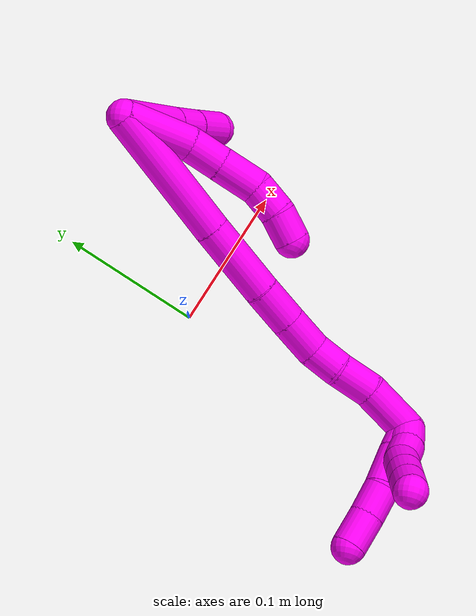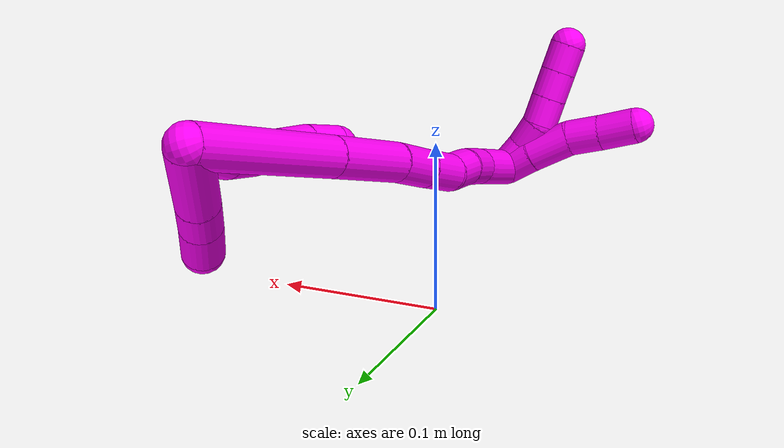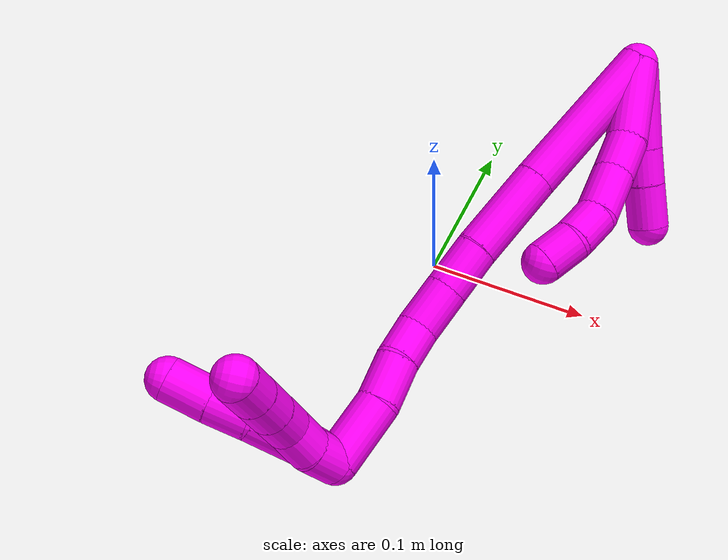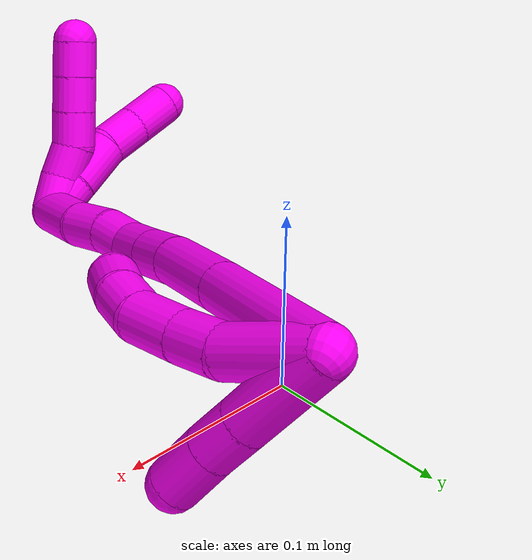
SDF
<sdf version="1.7">
 <world name="default">
  <model name="10">
   <static>0</static>
   <link name="10">
    <collision name="collision-cylinder-e_1_2_8">
     <pose>-0.024399 -0.007032 0.000189 1.54397 -1.29008 -1.26439</pose>
     <geometry><cylinder><radius>0.0125</radius><length>0.050786</length></cylinder></geometry>
     <surface>
      <friction><ode><mu>1.16</mu><mu2>1.16</mu2><slip1>0</slip1><slip2>0</slip2></ode></friction>
      <contact><ode><kp>1e+06</kp><kd>1</kd><max_vel>0</max_vel><min_depth>0.001</min_depth></ode></contact>
     </surface>
    </collision>
    <visual name="visual-cylinder-e_1_2_8">
     <pose>-0.024399 -0.007032 0.000189 1.54397 -1.29008 -1.26439</pose>
     <geometry><cylinder><radius>0.0125</radius><length>0.050786</length></cylinder></geometry>
     <material><ambient>1 0 0.964706 1</ambient></material>
    </visual>
    <collision name="collision-cylinder-e_2_8_9">
     <pose>-0.060876 -0.016357 -0.002686 2.49928 -1.26399 -2.28865</pose>
     <geometry><cylinder><radius>0.0125</radius><length>0.025339</length></cylinder></geometry>
     <surface>
      <friction><ode><mu>1.16</mu><mu2>1.16</mu2><slip1>0</slip1><slip2>0</slip2></ode></friction>
      <contact><ode><kp>1e+06</kp><kd>1</kd><max_vel>0</max_vel><min_depth>0.001</min_depth></ode></contact>
     </surface>
    </collision>
    <visual name="visual-cylinder-e_2_8_9">
     <pose>-0.060876 -0.016357 -0.002686 2.49928 -1.26399 -2.28865</pose>
     <geometry><cylinder><radius>0.0125</radius><length>0.025339</length></cylinder></geometry>
     <material><ambient>1 0 0.964706 1</ambient></material>
    </visual>
    <collision name="collision-cylinder-e_3_9_10">
     <pose>-0.087267 -0.020512 -0.009698 2.70069 -1.27475 -2.55385</pose>
     <geometry><cylinder><radius>0.0125</radius><length>0.029929</length></cylinder></geometry>
     <surface>
      <friction><ode><mu>1.16</mu><mu2>1.16</mu2><slip1>0</slip1><slip2>0</slip2></ode></friction>
      <contact><ode><kp>1e+06</kp><kd>1</kd><max_vel>0</max_vel><min_depth>0.001</min_depth></ode></contact>
     </surface>
    </collision>
    <visual name="visual-cylinder-e_3_9_10">
     <pose>-0.087267 -0.020512 -0.009698 2.70069 -1.27475 -2.55385</pose>
     <geometry><cylinder><radius>0.0125</radius><length>0.029929</length></cylinder></geometry>
     <material><ambient>1 0 0.964706 1</ambient></material>
    </visual>
    <collision name="collision-cylinder-e_4_10_11">
     <pose>-0.110772 -0.02411 -0.019714 2.86319 -0.969136 -2.62136</pose>
     <geometry><cylinder><radius>0.0125</radius><length>0.022298</length></cylinder></geometry>
     <surface>
      <friction><ode><mu>1.16</mu><mu2>1.16</mu2><slip1>0</slip1><slip2>0</slip2></ode></friction>
      <contact><ode><kp>1e+06</kp><kd>1</kd><max_vel>0</max_vel><min_depth>0.001</min_depth></ode></contact>
     </surface>
    </collision>
    <visual name="visual-cylinder-e_4_10_11">
     <pose>-0.110772 -0.02411 -0.019714 2.86319 -0.969136 -2.62136</pose>
     <geometry><cylinder><radius>0.0125</radius><length>0.022298</length></cylinder></geometry>
     <material><ambient>1 0 0.964706 1</ambient></material>
    </visual>
    <collision name="collision-cylinder-e_5_11_6">
     <pose>-0.127412 -0.029343 -0.032812 2.67981 -0.759037 -2.07643</pose>
     <geometry><cylinder><radius>0.0125</radius><length>0.021648</length></cylinder></geometry>
     <surface>
      <friction><ode><mu>1.16</mu><mu2>1.16</mu2><slip1>0</slip1><slip2>0</slip2></ode></friction>
      <contact><ode><kp>1e+06</kp><kd>1</kd><max_vel>0</max_vel><min_depth>0.001</min_depth></ode></contact>
     </surface>
    </collision>
    <visual name="visual-cylinder-e_5_11_6">
     <pose>-0.127412 -0.029343 -0.032812 2.67981 -0.759037 -2.07643</pose>
     <geometry><cylinder><radius>0.0125</radius><length>0.021648</length></cylinder></geometry>
     <material><ambient>1 0 0.964706 1</ambient></material>
    </visual>
    <collision name="collision-cylinder-e_1_2_12">
     <pose>-0.01743 -0.016237 0.009286 1.0513 -0.750112 -0.449049</pose>
     <geometry><cylinder><radius>0.0125</radius><length>0.051134</length></cylinder></geometry>
     <surface>
      <friction><ode><mu>1.16</mu><mu2>1.16</mu2><slip1>0</slip1><slip2>0</slip2></ode></friction>
      <contact><ode><kp>1e+06</kp><kd>1</kd><max_vel>0</max_vel><min_depth>0.001</min_depth></ode></contact>
     </surface>
    </collision>
    <visual name="visual-cylinder-e_1_2_12">
     <pose>-0.01743 -0.016237 0.009286 1.0513 -0.750112 -0.449049</pose>
     <geometry><cylinder><radius>0.0125</radius><length>0.051134</length></cylinder></geometry>
     <material><ambient>1 0 0.964706 1</ambient></material>
    </visual>
    <collision name="collision-cylinder-e_2_12_13">
     <pose>-0.042439 -0.039306 0.022804 1.01615 -0.75625 -0.435382</pose>
     <geometry><cylinder><radius>0.0125</radius><length>0.022093</length></cylinder></geometry>
     <surface>
      <friction><ode><mu>1.16</mu><mu2>1.16</mu2><slip1>0</slip1><slip2>0</slip2></ode></friction>
      <contact><ode><kp>1e+06</kp><kd>1</kd><max_vel>0</max_vel><min_depth>0.001</min_depth></ode></contact>
     </surface>
    </collision>
    <visual name="visual-cylinder-e_2_12_13">
     <pose>-0.042439 -0.039306 0.022804 1.01615 -0.75625 -0.435382</pose>
     <geometry><cylinder><radius>0.0125</radius><length>0.022093</length></cylinder></geometry>
     <material><ambient>1 0 0.964706 1</ambient></material>
    </visual>
    <collision name="collision-cylinder-e_3_13_5">
     <pose>-0.058738 -0.054728 0.032455 1.00808 -0.709301 -0.402952</pose>
     <geometry><cylinder><radius>0.0125</radius><length>0.026773</length></cylinder></geometry>
     <surface>
      <friction><ode><mu>1.16</mu><mu2>1.16</mu2><slip1>0</slip1><slip2>0</slip2></ode></friction>
      <contact><ode><kp>1e+06</kp><kd>1</kd><max_vel>0</max_vel><min_depth>0.001</min_depth></ode></contact>
     </surface>
    </collision>
    <visual name="visual-cylinder-e_3_13_5">
     <pose>-0.058738 -0.054728 0.032455 1.00808 -0.709301 -0.402952</pose>
     <geometry><cylinder><radius>0.0125</radius><length>0.026773</length></cylinder></geometry>
     <material><ambient>1 0 0.964706 1</ambient></material>
    </visual>
    <collision name="collision-cylinder-e_1_2_14">
     <pose>-0.03989 -0.016807 -0.024065 2.53193 -0.936413 -2.02848</pose>
     <geometry><cylinder><radius>0.0125</radius><length>0.099051</length></cylinder></geometry>
     <surface>
      <friction><ode><mu>1.16</mu><mu2>1.16</mu2><slip1>0</slip1><slip2>0</slip2></ode></friction>
      <contact><ode><kp>1e+06</kp><kd>1</kd><max_vel>0</max_vel><min_depth>0.001</min_depth></ode></contact>
     </surface>
    </collision>
    <visual name="visual-cylinder-e_1_2_14">
     <pose>-0.03989 -0.016807 -0.024065 2.53193 -0.936413 -2.02848</pose>
     <geometry><cylinder><radius>0.0125</radius><length>0.099051</length></cylinder></geometry>
     <material><ambient>1 0 0.964706 1</ambient></material>
    </visual>
    <collision name="collision-cylinder-e_2_14_15">
     <pose>-0.102233 -0.042971 -0.060974 2.512 -0.9549 -2.01811</pose>
     <geometry><cylinder><radius>0.0125</radius><length>0.055017</length></cylinder></geometry>
     <surface>
      <friction><ode><mu>1.16</mu><mu2>1.16</mu2><slip1>0</slip1><slip2>0</slip2></ode></friction>
      <contact><ode><kp>1e+06</kp><kd>1</kd><max_vel>0</max_vel><min_depth>0.001</min_depth></ode></contact>
     </surface>
    </collision>
    <visual name="visual-cylinder-e_2_14_15">
     <pose>-0.102233 -0.042971 -0.060974 2.512 -0.9549 -2.01811</pose>
     <geometry><cylinder><radius>0.0125</radius><length>0.055017</length></cylinder></geometry>
     <material><ambient>1 0 0.964706 1</ambient></material>
    </visual>
    <collision name="collision-cylinder-e_3_15_16">
     <pose>-0.136621 -0.058173 -0.079761 2.36447 -0.961135 -1.81024</pose>
     <geometry><cylinder><radius>0.0125</radius><length>0.029113</length></cylinder></geometry>
     <surface>
      <friction><ode><mu>1.16</mu><mu2>1.16</mu2><slip1>0</slip1><slip2>0</slip2></ode></friction>
      <contact><ode><kp>1e+06</kp><kd>1</kd><max_vel>0</max_vel><min_depth>0.001</min_depth></ode></contact>
     </surface>
    </collision>
    <visual name="visual-cylinder-e_3_15_16">
     <pose>-0.136621 -0.058173 -0.079761 2.36447 -0.961135 -1.81024</pose>
     <geometry><cylinder><radius>0.0125</radius><length>0.029113</length></cylinder></geometry>
     <material><ambient>1 0 0.964706 1</ambient></material>
    </visual>
    <collision name="collision-cylinder-e_4_16_17">
     <pose>-0.160272 -0.069359 -0.091468 2.39433 -0.979979 -1.87389</pose>
     <geometry><cylinder><radius>0.0125</radius><length>0.028216</length></cylinder></geometry>
     <surface>
      <friction><ode><mu>1.16</mu><mu2>1.16</mu2><slip1>0</slip1><slip2>0</slip2></ode></friction>
      <contact><ode><kp>1e+06</kp><kd>1</kd><max_vel>0</max_vel><min_depth>0.001</min_depth></ode></contact>
     </surface>
    </collision>
    <visual name="visual-cylinder-e_4_16_17">
     <pose>-0.160272 -0.069359 -0.091468 2.39433 -0.979979 -1.87389</pose>
     <geometry><cylinder><radius>0.0125</radius><length>0.028216</length></cylinder></geometry>
     <material><ambient>1 0 0.964706 1</ambient></material>
    </visual>
    <collision name="collision-cylinder-e_5_17_18">
     <pose>-0.182432 -0.075845 -0.101394 2.87311 -1.17892 -2.74308</pose>
     <geometry><cylinder><radius>0.0125</radius><length>0.022599</length></cylinder></geometry>
     <surface>
      <friction><ode><mu>1.16</mu><mu2>1.16</mu2><slip1>0</slip1><slip2>0</slip2></ode></friction>
      <contact><ode><kp>1e+06</kp><kd>1</kd><max_vel>0</max_vel><min_depth>0.001</min_depth></ode></contact>
     </surface>
    </collision>
    <visual name="visual-cylinder-e_5_17_18">
     <pose>-0.182432 -0.075845 -0.101394 2.87311 -1.17892 -2.74308</pose>
     <geometry><cylinder><radius>0.0125</radius><length>0.022599</length></cylinder></geometry>
     <material><ambient>1 0 0.964706 1</ambient></material>
    </visual>
    <collision name="collision-cylinder-e_6_18_19">
     <pose>-0.205516 -0.079933 -0.108694 2.38839 -1.2427 -2.13226</pose>
     <geometry><cylinder><radius>0.0125</radius><length>0.026708</length></cylinder></geometry>
     <surface>
      <friction><ode><mu>1.16</mu><mu2>1.16</mu2><slip1>0</slip1><slip2>0</slip2></ode></friction>
      <contact><ode><kp>1e+06</kp><kd>1</kd><max_vel>0</max_vel><min_depth>0.001</min_depth></ode></contact>
     </surface>
    </collision>
    <visual name="visual-cylinder-e_6_18_19">
     <pose>-0.205516 -0.079933 -0.108694 2.38839 -1.2427 -2.13226</pose>
     <geometry><cylinder><radius>0.0125</radius><length>0.026708</length></cylinder></geometry>
     <material><ambient>1 0 0.964706 1</ambient></material>
    </visual>
    <collision name="collision-cylinder-e_7_19_1">
     <pose>-0.235116 -0.088626 -0.119919 2.52338 -1.04142 -2.12546</pose>
     <geometry><cylinder><radius>0.0125</radius><length>0.039296</length></cylinder></geometry>
     <surface>
      <friction><ode><mu>1.16</mu><mu2>1.16</mu2><slip1>0</slip1><slip2>0</slip2></ode></friction>
      <contact><ode><kp>1e+06</kp><kd>1</kd><max_vel>0</max_vel><min_depth>0.001</min_depth></ode></contact>
     </surface>
    </collision>
    <visual name="visual-cylinder-e_7_19_1">
     <pose>-0.235116 -0.088626 -0.119919 2.52338 -1.04142 -2.12546</pose>
     <geometry><cylinder><radius>0.0125</radius><length>0.039296</length></cylinder></geometry>
     <material><ambient>1 0 0.964706 1</ambient></material>
    </visual>
    <collision name="collision-cylinder-e_1_1_20">
     <pose>-0.252383 -0.088963 -0.136406 -2.56915 -0.030875 0.104822</pose>
     <geometry><cylinder><radius>0.0125</radius><length>0.02</length></cylinder></geometry>
     <surface>
      <friction><ode><mu>1.16</mu><mu2>1.16</mu2><slip1>0</slip1><slip2>0</slip2></ode></friction>
      <contact><ode><kp>1e+06</kp><kd>1</kd><max_vel>0</max_vel><min_depth>0.001</min_depth></ode></contact>
     </surface>
    </collision>
    <visual name="visual-cylinder-e_1_1_20">
     <pose>-0.252383 -0.088963 -0.136406 -2.56915 -0.030875 0.104822</pose>
     <geometry><cylinder><radius>0.0125</radius><length>0.02</length></cylinder></geometry>
     <material><ambient>1 0 0.964706 1</ambient></material>
    </visual>
    <collision name="collision-cylinder-e_2_20_21">
     <pose>-0.250884 -0.077227 -0.152342 -2.44349 0.18182 -0.490855</pose>
     <geometry><cylinder><radius>0.0125</radius><length>0.02</length></cylinder></geometry>
     <surface>
      <friction><ode><mu>1.16</mu><mu2>1.16</mu2><slip1>0</slip1><slip2>0</slip2></ode></friction>
      <contact><ode><kp>1e+06</kp><kd>1</kd><max_vel>0</max_vel><min_depth>0.001</min_depth></ode></contact>
     </surface>
    </collision>
    <visual name="visual-cylinder-e_2_20_21">
     <pose>-0.250884 -0.077227 -0.152342 -2.44349 0.18182 -0.490855</pose>
     <geometry><cylinder><radius>0.0125</radius><length>0.02</length></cylinder></geometry>
     <material><ambient>1 0 0.964706 1</ambient></material>
    </visual>
    <collision name="collision-cylinder-e_3_21_22">
     <pose>-0.249625 -0.062859 -0.165789 -2.2045 -0.054971 0.108529</pose>
     <geometry><cylinder><radius>0.0125</radius><length>0.02</length></cylinder></geometry>
     <surface>
      <friction><ode><mu>1.16</mu><mu2>1.16</mu2><slip1>0</slip1><slip2>0</slip2></ode></friction>
      <contact><ode><kp>1e+06</kp><kd>1</kd><max_vel>0</max_vel><min_depth>0.001</min_depth></ode></contact>
     </surface>
    </collision>
    <visual name="visual-cylinder-e_3_21_22">
     <pose>-0.249625 -0.062859 -0.165789 -2.2045 -0.054971 0.108529</pose>
     <geometry><cylinder><radius>0.0125</radius><length>0.02</length></cylinder></geometry>
     <material><ambient>1 0 0.964706 1</ambient></material>
    </visual>
    <collision name="collision-cylinder-e_4_22_23">
     <pose>-0.250724 -0.046767 -0.177614 -2.20451 -0.055001 0.10859</pose>
     <geometry><cylinder><radius>0.0125</radius><length>0.02</length></cylinder></geometry>
     <surface>
      <friction><ode><mu>1.16</mu><mu2>1.16</mu2><slip1>0</slip1><slip2>0</slip2></ode></friction>
      <contact><ode><kp>1e+06</kp><kd>1</kd><max_vel>0</max_vel><min_depth>0.001</min_depth></ode></contact>
     </surface>
    </collision>
    <visual name="visual-cylinder-e_4_22_23">
     <pose>-0.250724 -0.046767 -0.177614 -2.20451 -0.055001 0.10859</pose>
     <geometry><cylinder><radius>0.0125</radius><length>0.02</length></cylinder></geometry>
     <material><ambient>1 0 0.964706 1</ambient></material>
    </visual>
    <collision name="collision-cylinder-e_5_23_4">
     <pose>-0.251848 -0.03069 -0.189458 -2.20699 -0.057419 0.113705</pose>
     <geometry><cylinder><radius>0.0125</radius><length>0.02</length></cylinder></geometry>
     <surface>
      <friction><ode><mu>1.16</mu><mu2>1.16</mu2><slip1>0</slip1><slip2>0</slip2></ode></friction>
      <contact><ode><kp>1e+06</kp><kd>1</kd><max_vel>0</max_vel><min_depth>0.001</min_depth></ode></contact>
     </surface>
    </collision>
    <visual name="visual-cylinder-e_5_23_4">
     <pose>-0.251848 -0.03069 -0.189458 -2.20699 -0.057419 0.113705</pose>
     <geometry><cylinder><radius>0.0125</radius><length>0.02</length></cylinder></geometry>
     <material><ambient>1 0 0.964706 1</ambient></material>
    </visual>
    <collision name="collision-cylinder-e_1_1_24">
     <pose>-0.249666 -0.092153 -0.138411 -2.93107 0.222593 -1.62695</pose>
     <geometry><cylinder><radius>0.0125</radius><length>0.021821</length></cylinder></geometry>
     <surface>
      <friction><ode><mu>1.16</mu><mu2>1.16</mu2><slip1>0</slip1><slip2>0</slip2></ode></friction>
      <contact><ode><kp>1e+06</kp><kd>1</kd><max_vel>0</max_vel><min_depth>0.001</min_depth></ode></contact>
     </surface>
    </collision>
    <visual name="visual-cylinder-e_1_1_24">
     <pose>-0.249666 -0.092153 -0.138411 -2.93107 0.222593 -1.62695</pose>
     <geometry><cylinder><radius>0.0125</radius><length>0.021821</length></cylinder></geometry>
     <material><ambient>1 0 0.964706 1</ambient></material>
    </visual>
    <collision name="collision-cylinder-e_2_24_25">
     <pose>-0.244669 -0.087713 -0.163354 -2.9903 0.174262 -1.7123</pose>
     <geometry><cylinder><radius>0.0125</radius><length>0.029861</length></cylinder></geometry>
     <surface>
      <friction><ode><mu>1.16</mu><mu2>1.16</mu2><slip1>0</slip1><slip2>0</slip2></ode></friction>
      <contact><ode><kp>1e+06</kp><kd>1</kd><max_vel>0</max_vel><min_depth>0.001</min_depth></ode></contact>
     </surface>
    </collision>
    <visual name="visual-cylinder-e_2_24_25">
     <pose>-0.244669 -0.087713 -0.163354 -2.9903 0.174262 -1.7123</pose>
     <geometry><cylinder><radius>0.0125</radius><length>0.029861</length></cylinder></geometry>
     <material><ambient>1 0 0.964706 1</ambient></material>
    </visual>
    <collision name="collision-cylinder-e_3_25_26">
     <pose>-0.239288 -0.086421 -0.188978 3.05847 0.245848 2.49225</pose>
     <geometry><cylinder><radius>0.0125</radius><length>0.022944</length></cylinder></geometry>
     <surface>
      <friction><ode><mu>1.16</mu><mu2>1.16</mu2><slip1>0</slip1><slip2>0</slip2></ode></friction>
      <contact><ode><kp>1e+06</kp><kd>1</kd><max_vel>0</max_vel><min_depth>0.001</min_depth></ode></contact>
     </surface>
    </collision>
    <visual name="visual-cylinder-e_3_25_26">
     <pose>-0.239288 -0.086421 -0.188978 3.05847 0.245848 2.49225</pose>
     <geometry><cylinder><radius>0.0125</radius><length>0.022944</length></cylinder></geometry>
     <material><ambient>1 0 0.964706 1</ambient></material>
    </visual>
    <collision name="collision-cylinder-e_4_26_3">
     <pose>-0.232883 -0.087853 -0.212218 3.09978 0.288817 2.856</pose>
     <geometry><cylinder><radius>0.0125</radius><length>0.025374</length></cylinder></geometry>
     <surface>
      <friction><ode><mu>1.16</mu><mu2>1.16</mu2><slip1>0</slip1><slip2>0</slip2></ode></friction>
      <contact><ode><kp>1e+06</kp><kd>1</kd><max_vel>0</max_vel><min_depth>0.001</min_depth></ode></contact>
     </surface>
    </collision>
    <visual name="visual-cylinder-e_4_26_3">
     <pose>-0.232883 -0.087853 -0.212218 3.09978 0.288817 2.856</pose>
     <geometry><cylinder><radius>0.0125</radius><length>0.025374</length></cylinder></geometry>
     <material><ambient>1 0 0.964706 1</ambient></material>
    </visual>
    <collision name="collision-sphere-3">
     <pose>-0.229269 -0.088362 -0.224369 0 -0 0</pose>
     <geometry><sphere><radius>0.0125</radius></sphere></geometry>
     <surface>
      <friction><ode><mu>1.16</mu><mu2>1.16</mu2><slip1>0</slip1><slip2>0</slip2></ode></friction>
      <contact><ode><kp>1e+06</kp><kd>1</kd><max_vel>0</max_vel><min_depth>0.001</min_depth></ode></contact>
     </surface>
    </collision>
    <visual name="visual-sphere-3">
     <pose>-0.229269 -0.088362 -0.224369 0 -0 0</pose>
     <geometry><sphere><radius>0.0125</radius></sphere></geometry>
     <material><ambient>1 0 0.964706 1</ambient></material>
    </visual>
    <collision name="collision-sphere-26">
     <pose>-0.236496 -0.087345 -0.200067 0 -0 0</pose>
     <geometry><sphere><radius>0.0125</radius></sphere></geometry>
     <surface>
      <friction><ode><mu>1.16</mu><mu2>1.16</mu2><slip1>0</slip1><slip2>0</slip2></ode></friction>
      <contact><ode><kp>1e+06</kp><kd>1</kd><max_vel>0</max_vel><min_depth>0.001</min_depth></ode></contact>
     </surface>
    </collision>
    <visual name="visual-sphere-26">
     <pose>-0.236496 -0.087345 -0.200067 0 -0 0</pose>
     <geometry><sphere><radius>0.0125</radius></sphere></geometry>
     <material><ambient>1 0 0.964706 1</ambient></material>
    </visual>
    <collision name="collision-sphere-25">
     <pose>-0.24208 -0.085497 -0.17789 0 -0 0</pose>
     <geometry><sphere><radius>0.0125</radius></sphere></geometry>
     <surface>
      <friction><ode><mu>1.16</mu><mu2>1.16</mu2><slip1>0</slip1><slip2>0</slip2></ode></friction>
      <contact><ode><kp>1e+06</kp><kd>1</kd><max_vel>0</max_vel><min_depth>0.001</min_depth></ode></contact>
     </surface>
    </collision>
    <visual name="visual-sphere-25">
     <pose>-0.24208 -0.085497 -0.17789 0 -0 0</pose>
     <geometry><sphere><radius>0.0125</radius></sphere></geometry>
     <material><ambient>1 0 0.964706 1</ambient></material>
    </visual>
    <collision name="collision-sphere-24">
     <pose>-0.247258 -0.08993 -0.148817 0 -0 0</pose>
     <geometry><sphere><radius>0.0125</radius></sphere></geometry>
     <surface>
      <friction><ode><mu>1.16</mu><mu2>1.16</mu2><slip1>0</slip1><slip2>0</slip2></ode></friction>
      <contact><ode><kp>1e+06</kp><kd>1</kd><max_vel>0</max_vel><min_depth>0.001</min_depth></ode></contact>
     </surface>
    </collision>
    <visual name="visual-sphere-24">
     <pose>-0.247258 -0.08993 -0.148817 0 -0 0</pose>
     <geometry><sphere><radius>0.0125</radius></sphere></geometry>
     <material><ambient>1 0 0.964706 1</ambient></material>
    </visual>
    <collision name="collision-sphere-4">
     <pose>-0.252422 -0.02266 -0.19539 0 -0 0</pose>
     <geometry><sphere><radius>0.0125</radius></sphere></geometry>
     <surface>
      <friction><ode><mu>1.16</mu><mu2>1.16</mu2><slip1>0</slip1><slip2>0</slip2></ode></friction>
      <contact><ode><kp>1e+06</kp><kd>1</kd><max_vel>0</max_vel><min_depth>0.001</min_depth></ode></contact>
     </surface>
    </collision>
    <visual name="visual-sphere-4">
     <pose>-0.252422 -0.02266 -0.19539 0 -0 0</pose>
     <geometry><sphere><radius>0.0125</radius></sphere></geometry>
     <material><ambient>1 0 0.964706 1</ambient></material>
    </visual>
    <collision name="collision-sphere-23">
     <pose>-0.251274 -0.03872 -0.183526 0 -0 0</pose>
     <geometry><sphere><radius>0.0125</radius></sphere></geometry>
     <surface>
      <friction><ode><mu>1.16</mu><mu2>1.16</mu2><slip1>0</slip1><slip2>0</slip2></ode></friction>
      <contact><ode><kp>1e+06</kp><kd>1</kd><max_vel>0</max_vel><min_depth>0.001</min_depth></ode></contact>
     </surface>
    </collision>
    <visual name="visual-sphere-23">
     <pose>-0.251274 -0.03872 -0.183526 0 -0 0</pose>
     <geometry><sphere><radius>0.0125</radius></sphere></geometry>
     <material><ambient>1 0 0.964706 1</ambient></material>
    </visual>
    <collision name="collision-sphere-22">
     <pose>-0.250175 -0.054813 -0.171702 0 -0 0</pose>
     <geometry><sphere><radius>0.0125</radius></sphere></geometry>
     <surface>
      <friction><ode><mu>1.16</mu><mu2>1.16</mu2><slip1>0</slip1><slip2>0</slip2></ode></friction>
      <contact><ode><kp>1e+06</kp><kd>1</kd><max_vel>0</max_vel><min_depth>0.001</min_depth></ode></contact>
     </surface>
    </collision>
    <visual name="visual-sphere-22">
     <pose>-0.250175 -0.054813 -0.171702 0 -0 0</pose>
     <geometry><sphere><radius>0.0125</radius></sphere></geometry>
     <material><ambient>1 0 0.964706 1</ambient></material>
    </visual>
    <collision name="collision-sphere-21">
     <pose>-0.249076 -0.070905 -0.159877 0 -0 0</pose>
     <geometry><sphere><radius>0.0125</radius></sphere></geometry>
     <surface>
      <friction><ode><mu>1.16</mu><mu2>1.16</mu2><slip1>0</slip1><slip2>0</slip2></ode></friction>
      <contact><ode><kp>1e+06</kp><kd>1</kd><max_vel>0</max_vel><min_depth>0.001</min_depth></ode></contact>
     </surface>
    </collision>
    <visual name="visual-sphere-21">
     <pose>-0.249076 -0.070905 -0.159877 0 -0 0</pose>
     <geometry><sphere><radius>0.0125</radius></sphere></geometry>
     <material><ambient>1 0 0.964706 1</ambient></material>
    </visual>
    <collision name="collision-sphere-20">
     <pose>-0.252692 -0.083549 -0.144808 0 -0 0</pose>
     <geometry><sphere><radius>0.0125</radius></sphere></geometry>
     <surface>
      <friction><ode><mu>1.16</mu><mu2>1.16</mu2><slip1>0</slip1><slip2>0</slip2></ode></friction>
      <contact><ode><kp>1e+06</kp><kd>1</kd><max_vel>0</max_vel><min_depth>0.001</min_depth></ode></contact>
     </surface>
    </collision>
    <visual name="visual-sphere-20">
     <pose>-0.252692 -0.083549 -0.144808 0 -0 0</pose>
     <geometry><sphere><radius>0.0125</radius></sphere></geometry>
     <material><ambient>1 0 0.964706 1</ambient></material>
    </visual>
    <collision name="collision-sphere-6">
     <pose>-0.134862 -0.032842 -0.039842 0 -0 0</pose>
     <geometry><sphere><radius>0.0125</radius></sphere></geometry>
     <surface>
      <friction><ode><mu>1.16</mu><mu2>1.16</mu2><slip1>0</slip1><slip2>0</slip2></ode></friction>
      <contact><ode><kp>1e+06</kp><kd>1</kd><max_vel>0</max_vel><min_depth>0.001</min_depth></ode></contact>
     </surface>
    </collision>
    <visual name="visual-sphere-6">
     <pose>-0.134862 -0.032842 -0.039842 0 -0 0</pose>
     <geometry><sphere><radius>0.0125</radius></sphere></geometry>
     <material><ambient>1 0 0.964706 1</ambient></material>
    </visual>
    <collision name="collision-sphere-11">
     <pose>-0.119963 -0.025844 -0.025782 0 -0 0</pose>
     <geometry><sphere><radius>0.0125</radius></sphere></geometry>
     <surface>
      <friction><ode><mu>1.16</mu><mu2>1.16</mu2><slip1>0</slip1><slip2>0</slip2></ode></friction>
      <contact><ode><kp>1e+06</kp><kd>1</kd><max_vel>0</max_vel><min_depth>0.001</min_depth></ode></contact>
     </surface>
    </collision>
    <visual name="visual-sphere-11">
     <pose>-0.119963 -0.025844 -0.025782 0 -0 0</pose>
     <geometry><sphere><radius>0.0125</radius></sphere></geometry>
     <material><ambient>1 0 0.964706 1</ambient></material>
    </visual>
    <collision name="collision-sphere-10">
     <pose>-0.10158 -0.022375 -0.013647 0 -0 0</pose>
     <geometry><sphere><radius>0.0125</radius></sphere></geometry>
     <surface>
      <friction><ode><mu>1.16</mu><mu2>1.16</mu2><slip1>0</slip1><slip2>0</slip2></ode></friction>
      <contact><ode><kp>1e+06</kp><kd>1</kd><max_vel>0</max_vel><min_depth>0.001</min_depth></ode></contact>
     </surface>
    </collision>
    <visual name="visual-sphere-10">
     <pose>-0.10158 -0.022375 -0.013647 0 -0 0</pose>
     <geometry><sphere><radius>0.0125</radius></sphere></geometry>
     <material><ambient>1 0 0.964706 1</ambient></material>
    </visual>
    <collision name="collision-sphere-9">
     <pose>-0.072954 -0.018649 -0.00575 0 -0 0</pose>
     <geometry><sphere><radius>0.0125</radius></sphere></geometry>
     <surface>
      <friction><ode><mu>1.16</mu><mu2>1.16</mu2><slip1>0</slip1><slip2>0</slip2></ode></friction>
      <contact><ode><kp>1e+06</kp><kd>1</kd><max_vel>0</max_vel><min_depth>0.001</min_depth></ode></contact>
     </surface>
    </collision>
    <visual name="visual-sphere-9">
     <pose>-0.072954 -0.018649 -0.00575 0 -0 0</pose>
     <geometry><sphere><radius>0.0125</radius></sphere></geometry>
     <material><ambient>1 0 0.964706 1</ambient></material>
    </visual>
    <collision name="collision-sphere-2">
     <geometry><sphere><radius>0.0125</radius></sphere></geometry>
     <surface>
      <friction><ode><mu>1.16</mu><mu2>1.16</mu2><slip1>0</slip1><slip2>0</slip2></ode></friction>
      <contact><ode><kp>1e+06</kp><kd>1</kd><max_vel>0</max_vel><min_depth>0.001</min_depth></ode></contact>
     </surface>
    </collision>
    <visual name="visual-sphere-2">
     <geometry><sphere><radius>0.0125</radius></sphere></geometry>
     <material><ambient>1 0 0.964706 1</ambient></material>
    </visual>
    <collision name="collision-sphere-19">
     <pose>-0.218158 -0.082876 -0.111833 0 -0 0</pose>
     <geometry><sphere><radius>0.0125</radius></sphere></geometry>
     <surface>
      <friction><ode><mu>1.16</mu><mu2>1.16</mu2><slip1>0</slip1><slip2>0</slip2></ode></friction>
      <contact><ode><kp>1e+06</kp><kd>1</kd><max_vel>0</max_vel><min_depth>0.001</min_depth></ode></contact>
     </surface>
    </collision>
    <visual name="visual-sphere-19">
     <pose>-0.218158 -0.082876 -0.111833 0 -0 0</pose>
     <geometry><sphere><radius>0.0125</radius></sphere></geometry>
     <material><ambient>1 0 0.964706 1</ambient></material>
    </visual>
    <collision name="collision-sphere-8">
     <pose>-0.048798 -0.014065 0.000377 0 -0 0</pose>
     <geometry><sphere><radius>0.0125</radius></sphere></geometry>
     <surface>
      <friction><ode><mu>1.16</mu><mu2>1.16</mu2><slip1>0</slip1><slip2>0</slip2></ode></friction>
      <contact><ode><kp>1e+06</kp><kd>1</kd><max_vel>0</max_vel><min_depth>0.001</min_depth></ode></contact>
     </surface>
    </collision>
    <visual name="visual-sphere-8">
     <pose>-0.048798 -0.014065 0.000377 0 -0 0</pose>
     <geometry><sphere><radius>0.0125</radius></sphere></geometry>
     <material><ambient>1 0 0.964706 1</ambient></material>
    </visual>
    <collision name="collision-sphere-12">
     <pose>-0.034859 -0.032475 0.018572 0 -0 0</pose>
     <geometry><sphere><radius>0.0125</radius></sphere></geometry>
     <surface>
      <friction><ode><mu>1.16</mu><mu2>1.16</mu2><slip1>0</slip1><slip2>0</slip2></ode></friction>
      <contact><ode><kp>1e+06</kp><kd>1</kd><max_vel>0</max_vel><min_depth>0.001</min_depth></ode></contact>
     </surface>
    </collision>
    <visual name="visual-sphere-12">
     <pose>-0.034859 -0.032475 0.018572 0 -0 0</pose>
     <geometry><sphere><radius>0.0125</radius></sphere></geometry>
     <material><ambient>1 0 0.964706 1</ambient></material>
    </visual>
    <collision name="collision-sphere-13">
     <pose>-0.050019 -0.046136 0.027036 0 -0 0</pose>
     <geometry><sphere><radius>0.0125</radius></sphere></geometry>
     <surface>
      <friction><ode><mu>1.16</mu><mu2>1.16</mu2><slip1>0</slip1><slip2>0</slip2></ode></friction>
      <contact><ode><kp>1e+06</kp><kd>1</kd><max_vel>0</max_vel><min_depth>0.001</min_depth></ode></contact>
     </surface>
    </collision>
    <visual name="visual-sphere-13">
     <pose>-0.050019 -0.046136 0.027036 0 -0 0</pose>
     <geometry><sphere><radius>0.0125</radius></sphere></geometry>
     <material><ambient>1 0 0.964706 1</ambient></material>
    </visual>
    <collision name="collision-sphere-5">
     <pose>-0.067457 -0.06332 0.037874 0 -0 0</pose>
     <geometry><sphere><radius>0.0125</radius></sphere></geometry>
     <surface>
      <friction><ode><mu>1.16</mu><mu2>1.16</mu2><slip1>0</slip1><slip2>0</slip2></ode></friction>
      <contact><ode><kp>1e+06</kp><kd>1</kd><max_vel>0</max_vel><min_depth>0.001</min_depth></ode></contact>
     </surface>
    </collision>
    <visual name="visual-sphere-5">
     <pose>-0.067457 -0.06332 0.037874 0 -0 0</pose>
     <geometry><sphere><radius>0.0125</radius></sphere></geometry>
     <material><ambient>1 0 0.964706 1</ambient></material>
    </visual>
    <collision name="collision-sphere-14">
     <pose>-0.079779 -0.033614 -0.048129 0 -0 0</pose>
     <geometry><sphere><radius>0.0125</radius></sphere></geometry>
     <surface>
      <friction><ode><mu>1.16</mu><mu2>1.16</mu2><slip1>0</slip1><slip2>0</slip2></ode></friction>
      <contact><ode><kp>1e+06</kp><kd>1</kd><max_vel>0</max_vel><min_depth>0.001</min_depth></ode></contact>
     </surface>
    </collision>
    <visual name="visual-sphere-14">
     <pose>-0.079779 -0.033614 -0.048129 0 -0 0</pose>
     <geometry><sphere><radius>0.0125</radius></sphere></geometry>
     <material><ambient>1 0 0.964706 1</ambient></material>
    </visual>
    <collision name="collision-sphere-15">
     <pose>-0.124687 -0.052328 -0.073818 0 -0 0</pose>
     <geometry><sphere><radius>0.0125</radius></sphere></geometry>
     <surface>
      <friction><ode><mu>1.16</mu><mu2>1.16</mu2><slip1>0</slip1><slip2>0</slip2></ode></friction>
      <contact><ode><kp>1e+06</kp><kd>1</kd><max_vel>0</max_vel><min_depth>0.001</min_depth></ode></contact>
     </surface>
    </collision>
    <visual name="visual-sphere-15">
     <pose>-0.124687 -0.052328 -0.073818 0 -0 0</pose>
     <geometry><sphere><radius>0.0125</radius></sphere></geometry>
     <material><ambient>1 0 0.964706 1</ambient></material>
    </visual>
    <collision name="collision-sphere-16">
     <pose>-0.148555 -0.064018 -0.085703 0 -0 0</pose>
     <geometry><sphere><radius>0.0125</radius></sphere></geometry>
     <surface>
      <friction><ode><mu>1.16</mu><mu2>1.16</mu2><slip1>0</slip1><slip2>0</slip2></ode></friction>
      <contact><ode><kp>1e+06</kp><kd>1</kd><max_vel>0</max_vel><min_depth>0.001</min_depth></ode></contact>
     </surface>
    </collision>
    <visual name="visual-sphere-16">
     <pose>-0.148555 -0.064018 -0.085703 0 -0 0</pose>
     <geometry><sphere><radius>0.0125</radius></sphere></geometry>
     <material><ambient>1 0 0.964706 1</ambient></material>
    </visual>
    <collision name="collision-sphere-17">
     <pose>-0.171988 -0.0747 -0.097233 0 -0 0</pose>
     <geometry><sphere><radius>0.0125</radius></sphere></geometry>
     <surface>
      <friction><ode><mu>1.16</mu><mu2>1.16</mu2><slip1>0</slip1><slip2>0</slip2></ode></friction>
      <contact><ode><kp>1e+06</kp><kd>1</kd><max_vel>0</max_vel><min_depth>0.001</min_depth></ode></contact>
     </surface>
    </collision>
    <visual name="visual-sphere-17">
     <pose>-0.171988 -0.0747 -0.097233 0 -0 0</pose>
     <geometry><sphere><radius>0.0125</radius></sphere></geometry>
     <material><ambient>1 0 0.964706 1</ambient></material>
    </visual>
    <collision name="collision-sphere-18">
     <pose>-0.192875 -0.076989 -0.105555 0 -0 0</pose>
     <geometry><sphere><radius>0.0125</radius></sphere></geometry>
     <surface>
      <friction><ode><mu>1.16</mu><mu2>1.16</mu2><slip1>0</slip1><slip2>0</slip2></ode></friction>
      <contact><ode><kp>1e+06</kp><kd>1</kd><max_vel>0</max_vel><min_depth>0.001</min_depth></ode></contact>
     </surface>
    </collision>
    <visual name="visual-sphere-18">
     <pose>-0.192875 -0.076989 -0.105555 0 -0 0</pose>
     <geometry><sphere><radius>0.0125</radius></sphere></geometry>
     <material><ambient>1 0 0.964706 1</ambient></material>
    </visual>
    <collision name="collision-sphere-1">
     <pose>-0.252075 -0.094377 -0.128004 0 -0 0</pose>
     <geometry><sphere><radius>0.0125</radius></sphere></geometry>
     <surface>
      <friction><ode><mu>1.16</mu><mu2>1.16</mu2><slip1>0</slip1><slip2>0</slip2></ode></friction>
      <contact><ode><kp>1e+06</kp><kd>1</kd><max_vel>0</max_vel><min_depth>0.001</min_depth></ode></contact>
     </surface>
    </collision>
    <visual name="visual-sphere-1">
     <pose>-0.252075 -0.094377 -0.128004 0 -0 0</pose>
     <geometry><sphere><radius>0.0125</radius></sphere></geometry>
     <material><ambient>1 0 0.964706 1</ambient></material>
    </visual>
    <inertial>
     <pose>-0.133616 -0.047607 -0.072333 0 -0 0</pose>
     <mass>0.75</mass>
     <inertia>
      <ixx>-0.000126</ixx>
      <ixy>0</ixy>
      <ixz>0</ixz>
      <iyy>4.1e-05</iyy>
      <iyz>0</iyz>
      <izz>0.000154</izz>
     </inertia>
    </inertial>
   </link>
   <pose>0.08697 0.107384 0.115433 1.88444 -0.099121 1.87366</pose>
  </model>
 </world>
</sdf>
